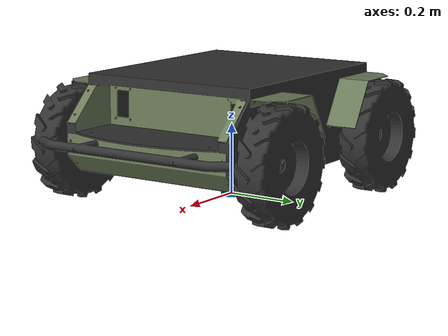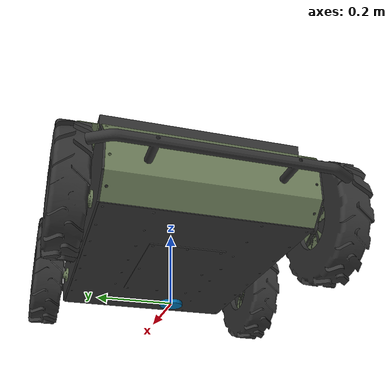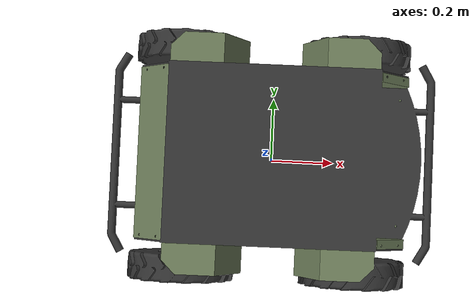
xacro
<?xml version="1.0"?>

<robot name="RIA-R100">

   <include filename="$(find ria_description)/urdf/materials.urdf.xacro" />
   <include filename="$(find ria_description)/urdf/property.urdf.xacro"/>
   <include filename="$(find ria_description)/urdf/wheel.urdf.xacro"/>
   <link name="base_footprint" >
	<visual>
	   <geometry>
              <cylinder radius="0.03" length="0.01"/>
	   </geometry>
           <origin rpy="0 0 0" xyz="0 0 0"/>
	</visual>
   </link>

   <link name="base_link" >
	<visual>
	   <geometry>
	      <box size="0.03 0.03 0.03" />
	   </geometry>
           <material name="Green"/>
           <origin rpy="0 0 0" xyz="0 0 0"/>
	</visual>
   </link>

   <link name="RIA_BASE_LOW" >
	<visual>
	   <geometry>
	      <mesh filename="package://ria_description/meshes/lower_body.stl" scale="0.001 0.001 0.001" />
	   </geometry>
           <material name="Dark_Grey"/>
           <origin rpy="${M_PI/2} 0 ${M_PI}" xyz="-0.03 -0.7 0"/>
	</visual>
	<collision>
	   <geometry>
	      <mesh filename="package://ria_description/meshes/lower_body.stl" scale="0.001 0.001 0.001" />
	   </geometry>
	</collision>
   </link>

   <link name="RIA_BASE_TOP">
      <visual>
         <geometry>
            <mesh filename="package://ria_description/meshes/upper_body.stl" scale="0.001 0.001 0.001"/>
         </geometry>
         <material name="Army_Green"/>
         <origin rpy="${M_PI/2} 0 ${M_PI}" xyz="-0.03 -0.7 0"/>
      </visual>
      <collision>
         <geometry>
            <mesh filename="package://ria_description/meshes/upper_body.stl" scale="0.001 0.001 0.001"/>
         </geometry>
      </collision>
   </link>

   <joint name="base_footprint_to_base_link" type="fixed">
      <parent link="base_footprint"/>
      <child link="base_link"/>
      	<origin rpy="0 0 0" xyz="0 0 ${BASE_LINK_HEIGHT}"/>
   </joint>
-->
   <joint name="base_link_to_RIA_BASE_LOW" type="fixed">
      <parent link="base_link"/>
      <child link="RIA_BASE_LOW"/>
         <origin rpy="0 0 0" xyz="0 0 0"/>
   </joint>

   <joint name="RIA_BASE_LOW_to_RIA_BASE_TOP" type="fixed">
      <parent link="RIA_BASE_LOW"/>
      <child link="RIA_BASE_TOP"/>
         <origin rpy="0 0 0" xyz="0 0 0"/>
   </joint>

   <joint name="base_link_to_wheel_fl" type="fixed">
      <parent link="base_link"/>
      <child link="WHEEL_FL"/>
         <origin rpy="0 0 0" xyz="${WHEEL_X} ${WHEEL_Y} ${WHEEL_SIZE/2 - BASE_LINK_HEIGHT}"/>
   </joint>

   <joint name="base_link_to_wheel_fr" type="fixed">
      <parent link="base_link"/>
      <child link="WHEEL_FR"/>
         <origin rpy="0 0 0" xyz="${WHEEL_X} ${-WHEEL_Y} ${WHEEL_SIZE/2 - BASE_LINK_HEIGHT}"/>
   </joint>

   <joint name="base_link_to_wheel_bl" type="fixed">
      <parent link="base_link"/>
      <child link="WHEEL_BL"/>
         <origin rpy="0 0 0" xyz="${-WHEEL_X} ${WHEEL_Y} ${WHEEL_SIZE/2 - BASE_LINK_HEIGHT}"/>
   </joint>

   <joint name="base_link_to_wheel_br" type="fixed">
      <parent link="base_link"/>
      <child link="WHEEL_BR"/>
         <origin rpy="0 0 0" xyz="${-WHEEL_X} ${-WHEEL_Y} ${WHEEL_SIZE/2 - BASE_LINK_HEIGHT}"/>
   </joint>
</robot>

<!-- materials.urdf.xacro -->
<robot name="RIA-R100-Materials" xmlns:xacro="http://www.ros.org/wiki/xacro">

   <material name="Dark_Grey">
      <color rgba="0.2 0.2 0.2 1"/>
   </material>

   <material name="Army_Green">
      <color rgba="0.4235 0.4862 0.3490 1"/>
   </material>

   <material name="Black">
      <color rgba="0 0 0 1"/>
   </material>

   <material name="Red">
      <color rgba="1 0 0 1"/>
   </material>

   <material name="Green">
      <color rgba="0 1 0 1"/>
   </material>

</robot>

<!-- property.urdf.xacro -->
<robot name="RIA-R100-properties" xmlns:xacro="http://www.ros.org/wiki/xacro">

      <xacro:property name="M_PI" value="3.1415926535897931"/>
      <xacro:property name="WHEEL_SIZE" value="0.32"/>
      <xacro:property name="WHEEL_X" value="0.26"/>
      <xacro:property name="WHEEL_Y" value="0.33"/>
      <xacro:property name="BASE_LINK_HEIGHT" value="0.11"/>
      <xacro:property name="WHEEL_MESH" value="wheel.STL"/>
<!--orbbec properties-->
      <property name="orbbec_x" value="0.380"/>
      <property name="orbbec_y" value="-0.045"/>
      <property name="orbbec_z" value="0.248"/>
      <property name="orbbec_depth_x_from_rgb" value="0"/>
      <property name="orbbec_depth_y_from_rgb" value="0.025"/>
      <property name="orbbec_depth_z_from_rgb" value="0"/>

<!--sick lidar properties-->
      <property name="laser_x" value="0.420"/>
      <property name="laser_y" value="0.0"/>
      <property name="laser_z" value="0.108"/>
   </robot>

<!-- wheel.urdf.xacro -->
<robot name="RIA-R100-wheels" xmlns:xacro="http://www.ros.org/wiki/xacro">

   <link name="WHEEL_FL">
      <inertial>
         <mass value="2.5"/>
         <origin rpy="0 0 0" xyz="0 0 0"/>
         <inertia  ixx="0.035" ixy="0.0"  ixz="0.0"  iyy="0.019"  iyz="0.0"  izz="0.019" />
      </inertial>
      <visual>
         <geometry>
	    <mesh filename="package://ria_description/meshes/${WHEEL_MESH}" scale="0.001 0.001 0.001" />
         </geometry>
         <material name="Dark_Grey"/>
         <origin rpy="0 0 -${M_PI/2}" xyz="-0.19 0.5 -0.16"/>
      </visual>
      <collision>
         <geometry>
	    <mesh filename="package://ria_description/meshes/${WHEEL_MESH}" scale="0.001 0.001 0.001" />
         </geometry>
         <origin rpy="0 0 -${M_PI/2}" xyz="-0.19 0.5 -0.16"/>
      </collision>
   </link>

   <link name="WHEEL_FR">
      <inertial>
         <mass value="2.5"/>
         <origin rpy="0 0 0" xyz="0 0 0"/>
         <inertia  ixx="0.035" ixy="0.0"  ixz="0.0"  iyy="0.019"  iyz="0.0"  izz="0.019" />
      </inertial>
      <visual>
         <geometry>
	    <mesh filename="package://ria_description/meshes/${WHEEL_MESH}" scale="0.001 0.001 0.001" />
         </geometry>
         <material name="Dark_Grey"/>
         <origin rpy="0 0 -${M_PI/2}" xyz="-0.19 0.5 -0.16"/>
      </visual>
      <collision>
         <geometry>
	    <mesh filename="package://ria_description/meshes/${WHEEL_MESH}" scale="0.001 0.001 0.001" />
         </geometry>
         <origin rpy="0 0 -${M_PI/2}" xyz="-0.19 0.5 -0.16"/>
      </collision>
   </link>

   <link name="WHEEL_BL">
      <inertial>
         <mass value="2.5"/>
         <origin rpy="0 0 0" xyz="0 0 0"/>
         <inertia  ixx="0.035" ixy="0.0"  ixz="0.0"  iyy="0.019"  iyz="0.0"  izz="0.019" />
      </inertial>
      <visual>
         <geometry>
	    <mesh filename="package://ria_description/meshes/${WHEEL_MESH}" scale="0.001 0.001 0.001" />
         </geometry>
         <material name="Dark_Grey"/>
         <origin rpy="0 0 -${M_PI/2}" xyz="-0.19 0.5 -0.16"/>
      </visual>
      <collision>
         <geometry>
	    <mesh filename="package://ria_description/meshes/${WHEEL_MESH}" scale="0.001 0.001 0.001" />
         </geometry>
         <origin rpy="0 0 -${M_PI/2}" xyz="-0.19 0.5 -0.16"/>
      </collision>
   </link>

   <link name="WHEEL_BR">
      <inertial>
         <mass value="2.5"/>
         <origin rpy="0 0 0" xyz="0 0 0"/>
         <inertia  ixx="0.035" ixy="0.0"  ixz="0.0"  iyy="0.019"  iyz="0.0"  izz="0.019" />
      </inertial>
      <visual>
         <geometry>
	    <mesh filename="package://ria_description/meshes/${WHEEL_MESH}" scale="0.001 0.001 0.001" />
         </geometry>
         <material name="Dark_Grey"/>
         <origin rpy="0 0 -${M_PI/2}" xyz="-0.19 0.5 -0.16"/>
      </visual>
      <collision>
         <geometry>
	    <mesh filename="package://ria_description/meshes/${WHEEL_MESH}" scale="0.001 0.001 0.001" />
         </geometry>
         <origin rpy="0 0 -${M_PI/2}" xyz="-0.19 0.5 -0.16"/>
      </collision>
   </link>

</robot>
